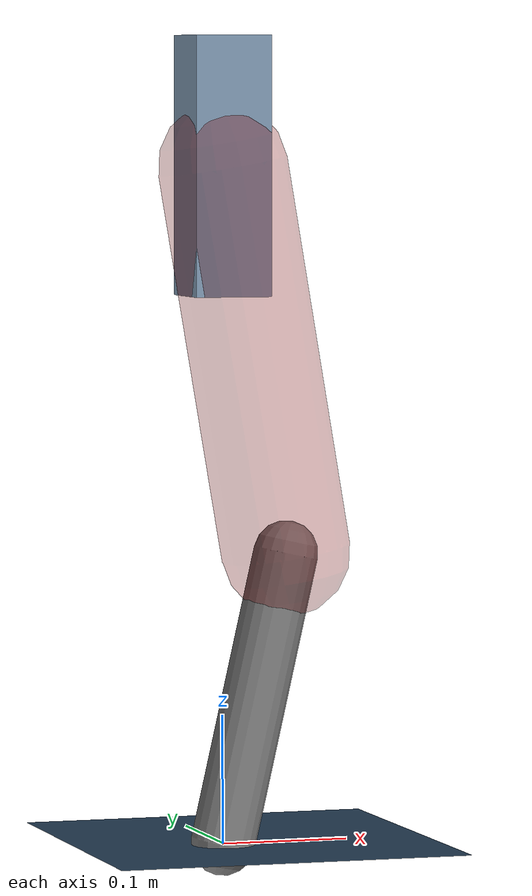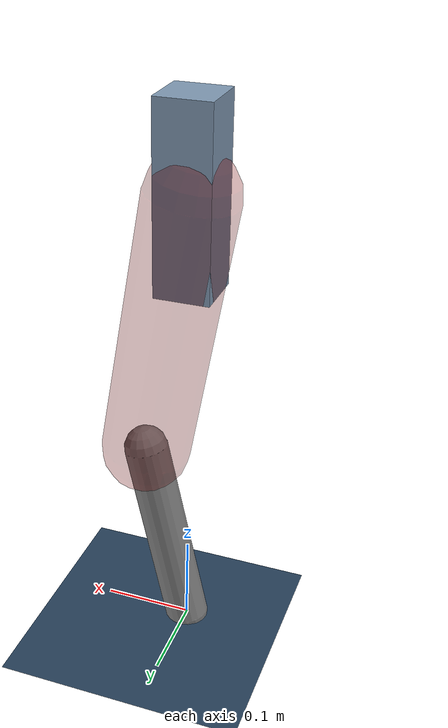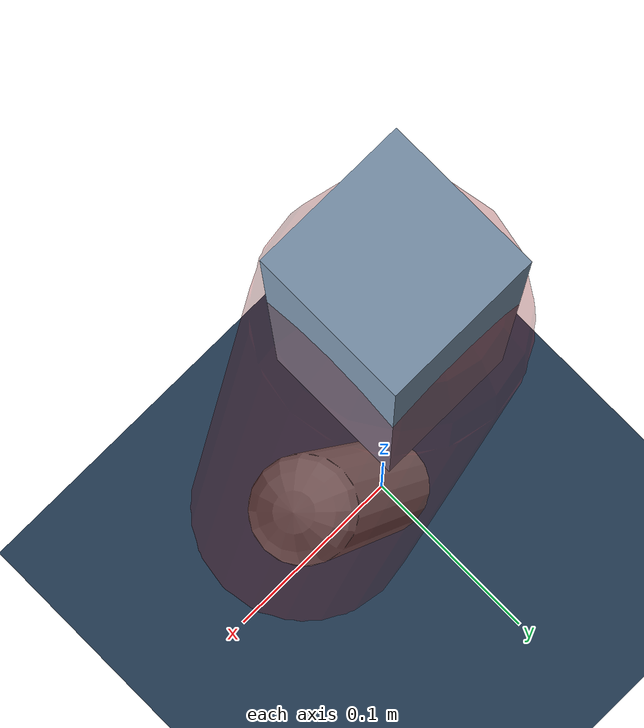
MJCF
<mujoco model="Hopper2D">
	<compiler inertiafromgeom="true" angle="radian" />
	<option timestep="0.001" integrator="implicit" cone="elliptic" solver="Newton" tolerance="1e-10" />

	<default>
		<geom contype="1" conaffinity="1" condim="3" friction="2 0.005 0.0001" solref="0.005 1" />
		<joint limited="true" damping="0.1" />
	</default>

	<asset>
		<texture name="skybox" type="skybox" builtin="gradient" rgb1=".4 .6 .8" rgb2="0 0 0" width="800" height="800" />
		<texture name="grid" type="2d" builtin="checker" rgb1=".1 .2 .3" rgb2=".2 .3 .4" width="300" height="300" mark="edge" markrgb=".2 .3 .4" />
		<material name="ground" texture="grid" texrepeat="1 1" texuniform="true" reflectance="0.1" />
		<material name="leg" rgba="0.5 0.6 0.7 1" />
	</asset>

	<worldbody>

		<geom name="floor" type="plane" size="5 5 0.25" material="ground" />

		<light directional="false" diffuse="0.8 0.8 0.8" specular="0.3 0.3 0.3" pos="0 0 2" dir="0 0 -1" />
		<light mode="targetbodycom" target="base" directional="false" diffuse="0.8 0.8 0.8" specular="0.3 0.3 0.3" pos="0 0 2" dir="0 0 -1" />

		<camera name="fixed" pos="0 -2 1" xyaxes="1 0 0 0 0 1" />
		<camera name="tracking" mode="trackcom" pos="0 -3 1" />

		<body name="root" pos="0 0 0.5242701103556799">
			<joint name="slide_x" type="slide" axis="1 0 0" range="-100 100" />
			<joint name="slide_z" type="slide" axis="0 0 1" range="0 10" />

			<body name="base" pos="0 0 0">
				<geom name="torso" type="box" size="0.03 0.03 0.1" mass="1.794" material="leg" />

				<body name="link1" pos="0 0 0" euler="0 1.4022885512131227 0">
					<joint type="hinge" axis="0 -1 0" pos="0 0 0" name="hinge1" limited="true" range="-3.14 3.14" stiffness="0" damping="0.1" />
					<geom name="thigh" type="capsule" fromto="0 0 0 0.3037296996715114 0 0" size="0.05" rgba="0.5 0 0 0.3" mass="0.9988701891130809" />

					<body name="link2" pos="0.3037296996715114 0 0" euler="0 0.39130085555475713 0">
						<joint type="hinge" axis="0 -1 0" pos="0 0 0" name="hinge2" limited="true" range="-3.14 3.14" stiffness="0" damping="0.1" />
						<geom name="shank" type="capsule" fromto="0 0 0 0.23054041068416853 0 0" size="0.025" mass="0.4264323285473348" />

					</body>
				</body>
			</body>
		</body>
	</worldbody>

	<actuator>
		<motor name="torque1" joint="hinge1" ctrlrange="-53.89221370103761 53.89221370103761" ctrllimited="true" gear="1" />
		<motor name="torque2" joint="hinge2" ctrlrange="-64.27269781599416 64.27269781599416" ctrllimited="true" gear="1" />
	</actuator>
</mujoco>
